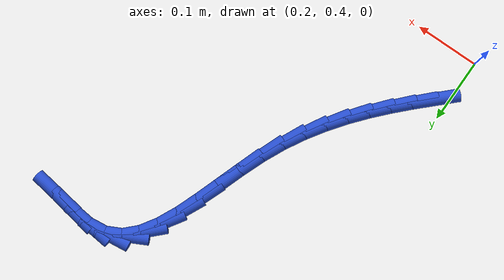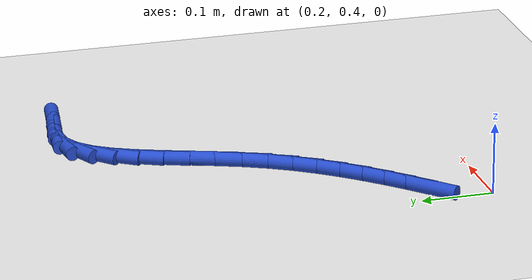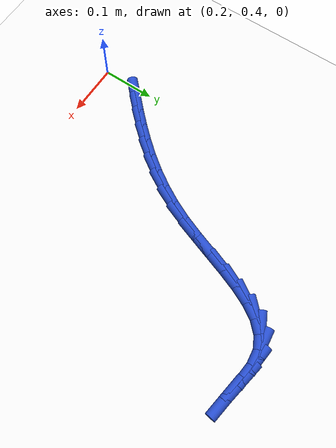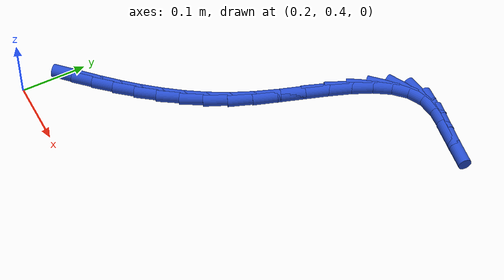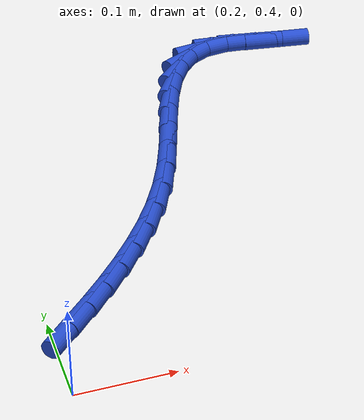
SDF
<sdf version="1.6">
 <world name="default">
  <model name="ground_plane">
   <static>1</static>
   <link name="link">
    <collision name="collision">
     <geometry><plane><normal>0 0 1</normal><size>100 100</size></plane></geometry>
     <surface><friction><ode><mu>100</mu><mu2>50</mu2></ode></friction></surface>
    </collision>
    <visual name="visual">
     <cast_shadows>0</cast_shadows>
     <geometry><plane><normal>0 0 1</normal><size>100 100</size></plane></geometry>
     <material>
      <script><uri>file://media/materials/scripts/gazebo.material</uri><name>Gazebo/WhiteGlow</name></script>
     </material>
    </visual>
   </link>
  </model>
  <model name="line">
   <link name="link_18">
    <pose>0.22120679743509084 0.48177478357498915 0.01 0 1.57 0.7790840800480028</pose>
    <collision name="collision">
     <geometry><cylinder><radius>0.01</radius><length>0.08</length></cylinder></geometry>
    </collision>
    <visual name="visual">
     <material>
      <script><name>Gazebo/Blue</name><uri>file://media/materials/scripts/gazebo.material</uri></script>
     </material>
     <geometry><cylinder><radius>0.01</radius><length>0.08</length></cylinder></geometry>
    </visual>
   </link>
   <link name="link_19">
    <pose>0.24403756948715513 0.5043190500443998 0.01 0 1.57 0.8040532003164864</pose>
    <collision name="collision">
     <geometry><cylinder><radius>0.01</radius><length>0.08</length></cylinder></geometry>
    </collision>
    <visual name="visual">
     <material>
      <script><name>Gazebo/Blue</name><uri>file://media/materials/scripts/gazebo.material</uri></script>
     </material>
     <geometry><cylinder><radius>0.01</radius><length>0.08</length></cylinder></geometry>
    </visual>
   </link>
   <link name="link_20">
    <pose>0.2665299086596449 0.5276666338867463 0.01 0 1.57 0.8389356765060707</pose>
    <collision name="collision">
     <geometry><cylinder><radius>0.01</radius><length>0.08</length></cylinder></geometry>
    </collision>
    <visual name="visual">
     <material>
      <script><name>Gazebo/Blue</name><uri>file://media/materials/scripts/gazebo.material</uri></script>
     </material>
     <geometry><cylinder><radius>0.01</radius><length>0.08</length></cylinder></geometry>
    </visual>
   </link>
   <link name="link_21">
    <pose>0.28842689079949846 0.552043365227886 0.01 0 1.57 0.8833561399090529</pose>
    <collision name="collision">
     <geometry><cylinder><radius>0.01</radius><length>0.08</length></cylinder></geometry>
    </collision>
    <visual name="visual">
     <material>
      <script><name>Gazebo/Blue</name><uri>file://media/materials/scripts/gazebo.material</uri></script>
     </material>
     <geometry><cylinder><radius>0.01</radius><length>0.08</length></cylinder></geometry>
    </visual>
   </link>
   <link name="link_22">
    <pose>0.3094715917536544 0.5776750741936771 0.01 0 1.57 0.9367778790147734</pose>
    <collision name="collision">
     <geometry><cylinder><radius>0.01</radius><length>0.08</length></cylinder></geometry>
    </collision>
    <visual name="visual">
     <material>
      <script><name>Gazebo/Blue</name><uri>file://media/materials/scripts/gazebo.material</uri></script>
     </material>
     <geometry><cylinder><radius>0.01</radius><length>0.08</length></cylinder></geometry>
    </visual>
   </link>
   <link name="link_23">
    <pose>0.32940708736905105 0.6047875909099774 0.01 0 1.57 0.9984095267916203</pose>
    <collision name="collision">
     <geometry><cylinder><radius>0.01</radius><length>0.08</length></cylinder></geometry>
    </collision>
    <visual name="visual">
     <material>
      <script><name>Gazebo/Blue</name><uri>file://media/materials/scripts/gazebo.material</uri></script>
     </material>
     <geometry><cylinder><radius>0.01</radius><length>0.08</length></cylinder></geometry>
    </visual>
   </link>
   <link name="link_24">
    <pose>0.3479764534926272 0.6336067455026448 0.01 0 1.57 1.0671315954413565</pose>
    <collision name="collision">
     <geometry><cylinder><radius>0.01</radius><length>0.08</length></cylinder></geometry>
    </collision>
    <visual name="visual">
     <material>
      <script><name>Gazebo/Blue</name><uri>file://media/materials/scripts/gazebo.material</uri></script>
     </material>
     <geometry><cylinder><radius>0.01</radius><length>0.08</length></cylinder></geometry>
    </visual>
   </link>
   <link name="link_25">
    <pose>0.36492276597132045 0.6643583680975362 0.01 0 1.57 1.1413952239322365</pose>
    <collision name="collision">
     <geometry><cylinder><radius>0.01</radius><length>0.08</length></cylinder></geometry>
    </collision>
    <visual name="visual">
     <material>
      <script><name>Gazebo/Blue</name><uri>file://media/materials/scripts/gazebo.material</uri></script>
     </material>
     <geometry><cylinder><radius>0.01</radius><length>0.08</length></cylinder></geometry>
    </visual>
   </link>
   <link name="link_26">
    <pose>0.3799908967489671 0.6972656636821477 0.01 0 1.57 1.207326843936887</pose>
    <collision name="collision">
     <geometry><cylinder><radius>0.01</radius><length>0.08</length></cylinder></geometry>
    </collision>
    <visual name="visual">
     <material>
      <script><name>Gazebo/Blue</name><uri>file://media/materials/scripts/gazebo.material</uri></script>
     </material>
     <geometry><cylinder><radius>0.01</radius><length>0.08</length></cylinder></geometry>
    </visual>
   </link>
   <link name="link_27">
    <pose>0.3932386787956656 0.7320944198308803 0.01 0 1.57 1.2413150006009854</pose>
    <collision name="collision">
     <geometry><cylinder><radius>0.01</radius><length>0.08</length></cylinder></geometry>
    </collision>
    <visual name="visual">
     <material>
      <script><name>Gazebo/Blue</name><uri>file://media/materials/scripts/gazebo.material</uri></script>
     </material>
     <geometry><cylinder><radius>0.01</radius><length>0.08</length></cylinder></geometry>
    </visual>
   </link>
   <link name="link_28">
    <pose>0.4053915194729792 0.7676347110881909 0.01 0 1.57 1.2431237728315745</pose>
    <collision name="collision">
     <geometry><cylinder><radius>0.01</radius><length>0.08</length></cylinder></geometry>
    </collision>
    <visual name="visual">
     <material>
      <script><name>Gazebo/Blue</name><uri>file://media/materials/scripts/gazebo.material</uri></script>
     </material>
     <geometry><cylinder><radius>0.01</radius><length>0.08</length></cylinder></geometry>
    </visual>
   </link>
   <link name="link_29">
    <pose>0.41726058168269214 0.8025512734609088 0.01 0 1.57 1.2110322555889073</pose>
    <collision name="collision">
     <geometry><cylinder><radius>0.01</radius><length>0.08</length></cylinder></geometry>
    </collision>
    <visual name="visual">
     <material>
      <script><name>Gazebo/Blue</name><uri>file://media/materials/scripts/gazebo.material</uri></script>
     </material>
     <geometry><cylinder><radius>0.01</radius><length>0.08</length></cylinder></geometry>
    </visual>
   </link>
   <link name="link_30">
    <pose>0.429657028326589 0.8355088429558638 0.01 0 1.57 1.1371599077945795</pose>
    <collision name="collision">
     <geometry><cylinder><radius>0.01</radius><length>0.08</length></cylinder></geometry>
    </collision>
    <visual name="visual">
     <material>
      <script><name>Gazebo/Blue</name><uri>file://media/materials/scripts/gazebo.material</uri></script>
     </material>
     <geometry><cylinder><radius>0.01</radius><length>0.08</length></cylinder></geometry>
    </visual>
   </link>
   <link name="link_31">
    <pose>0.44339202230645347 0.8651721555798839 0.01 0 1.57 1.0053729598017225</pose>
    <collision name="collision">
     <geometry><cylinder><radius>0.01</radius><length>0.08</length></cylinder></geometry>
    </collision>
    <visual name="visual">
     <material>
      <script><name>Gazebo/Blue</name><uri>file://media/materials/scripts/gazebo.material</uri></script>
     </material>
     <geometry><cylinder><radius>0.01</radius><length>0.08</length></cylinder></geometry>
    </visual>
   </link>
   <link name="link_32">
    <pose>0.4592767265240702 0.8902059473397996 0.01 0 1.57 0.7912910661827198</pose>
    <collision name="collision">
     <geometry><cylinder><radius>0.01</radius><length>0.08</length></cylinder></geometry>
    </collision>
    <visual name="visual">
     <material>
      <script><name>Gazebo/Blue</name><uri>file://media/materials/scripts/gazebo.material</uri></script>
     </material>
     <geometry><cylinder><radius>0.01</radius><length>0.08</length></cylinder></geometry>
    </visual>
   </link>
   <link name="link_33">
    <pose>0.47812230388122345 0.9092749542424399 0.01 0 1.57 0.4797906827714459</pose>
    <collision name="collision">
     <geometry><cylinder><radius>0.01</radius><length>0.08</length></cylinder></geometry>
    </collision>
    <visual name="visual">
     <material>
      <script><name>Gazebo/Blue</name><uri>file://media/materials/scripts/gazebo.material</uri></script>
     </material>
     <geometry><cylinder><radius>0.01</radius><length>0.08</length></cylinder></geometry>
    </visual>
   </link>
   <link name="link_34">
    <pose>0.5007399172796971 0.9210439122946334 0.01 0 1.57 0.12772534868190275</pose>
    <collision name="collision">
     <geometry><cylinder><radius>0.01</radius><length>0.08</length></cylinder></geometry>
    </collision>
    <visual name="visual">
     <material>
      <script><name>Gazebo/Blue</name><uri>file://media/materials/scripts/gazebo.material</uri></script>
     </material>
     <geometry><cylinder><radius>0.01</radius><length>0.08</length></cylinder></geometry>
    </visual>
   </link>
   <link name="link_35">
    <pose>0.527779397697808 0.9245164432795403 0.01 0 1.57 -0.09152931242597868</pose>
    <collision name="collision">
     <geometry><cylinder><radius>0.01</radius><length>0.08</length></cylinder></geometry>
    </collision>
    <visual name="visual">
     <material>
      <script><name>Gazebo/Blue</name><uri>file://media/materials/scripts/gazebo.material</uri></script>
     </material>
     <geometry><cylinder><radius>0.01</radius><length>0.08</length></cylinder></geometry>
    </visual>
   </link>
   <link name="link_36">
    <pose>0.5584603808973575 0.9217003655821675 0.01 0 1.57 -0.16695197239894577</pose>
    <collision name="collision">
     <geometry><cylinder><radius>0.01</radius><length>0.08</length></cylinder></geometry>
    </collision>
    <visual name="visual">
     <material>
      <script><name>Gazebo/Blue</name><uri>file://media/materials/scripts/gazebo.material</uri></script>
     </material>
     <geometry><cylinder><radius>0.01</radius><length>0.08</length></cylinder></geometry>
    </visual>
   </link>
   <link name="link_37">
    <pose>0.5912549316734963 0.9161738078023254 0.01 0 1.57 -0.13829959741874712</pose>
    <collision name="collision">
     <geometry><cylinder><radius>0.01</radius><length>0.08</length></cylinder></geometry>
    </collision>
    <visual name="visual">
     <material>
      <script><name>Gazebo/Blue</name><uri>file://media/materials/scripts/gazebo.material</uri></script>
     </material>
     <geometry><cylinder><radius>0.01</radius><length>0.08</length></cylinder></geometry>
    </visual>
   </link>
  </model>
 </world>
</sdf>
